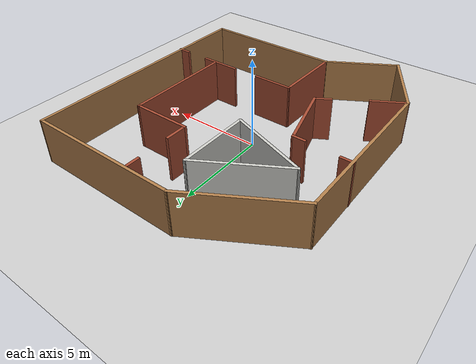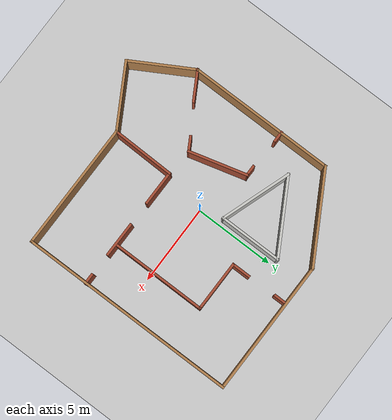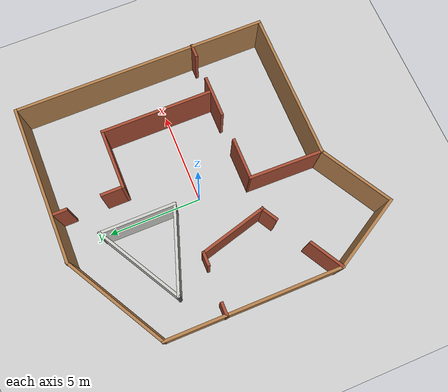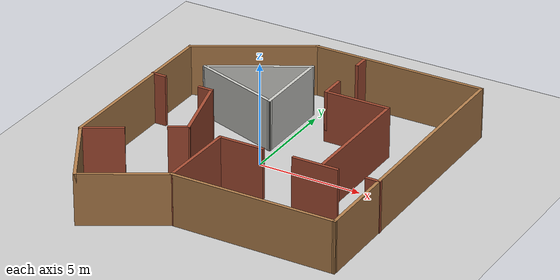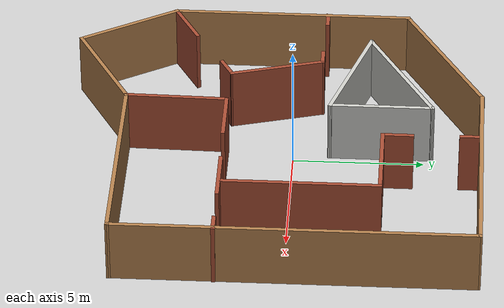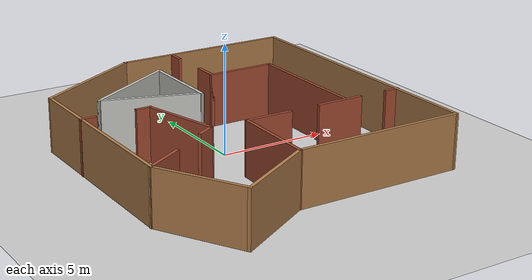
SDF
<sdf version="1.7">
 <world name="default">
  <light name="sun" type="directional">
   <pose>0 0 10 0 -0 0</pose>
   <diffuse>0.8 0.8 0.8 1</diffuse>
   <specular>0.2 0.2 0.2 1</specular>
   <attenuation>
    <range>1000</range>
    <constant>0.9</constant>
    <linear>0.01</linear>
    <quadratic>0.001</quadratic>
   </attenuation>
   <direction>-0.5 0.1 -0.9</direction>
   <spot><inner_angle>0</inner_angle><outer_angle>0</outer_angle><falloff>0</falloff></spot>
  </light>
  <model name="ground_plane">
   <static>1</static>
   <link name="link">
    <collision name="collision">
     <geometry><plane><normal>0 0 1</normal><size>100 100</size></plane></geometry>
     <surface><friction><ode><mu>100</mu><mu2>50</mu2></ode></friction></surface>
    </collision>
    <visual name="visual">
     <cast_shadows>0</cast_shadows>
     <geometry><plane><normal>0 0 1</normal><size>100 100</size></plane></geometry>
     <material>
      <script><uri>file://media/materials/scripts/gazebo.material</uri><name>Gazebo/Grey</name></script>
     </material>
    </visual>
   </link>
  </model>
  <gravity>0 0 -9.8</gravity>
  <magnetic_field>6e-06 2.3e-05 -4.2e-05</magnetic_field>
  <atmosphere type="adiabatic"/>
  <physics type="ode">
   <max_step_size>0.001</max_step_size>
   <real_time_factor>1</real_time_factor>
   <real_time_update_rate>1000</real_time_update_rate>
  </physics>
  <scene><ambient>0.4 0.4 0.4 1</ambient><background>0.7 0.7 0.7 1</background><shadows>1</shadows></scene>
  <audio><device>default</device></audio>
  <spherical_coordinates>
   <surface_model>EARTH_WGS84</surface_model>
   <latitude_deg>0</latitude_deg>
   <longitude_deg>0</longitude_deg>
   <elevation>0</elevation>
   <heading_deg>0</heading_deg>
  </spherical_coordinates>
  <model name="Room.world">
   <pose>0.56378 -0.644427 0 0 -0 0</pose>
   <link name="Wall_0">
    <collision name="Wall_0_Collision">
     <geometry><box><size>8 0.15 2.5</size></box></geometry>
     <pose>0 0 1.25 0 -0 0</pose>
    </collision>
    <visual name="Wall_0_Visual">
     <pose>0 0 1.25 0 -0 0</pose>
     <geometry><box><size>8 0.15 2.5</size></box></geometry>
     <material>
      <script><uri>file://media/materials/scripts/gazebo.material</uri><name>Gazebo/Wood</name></script>
      <ambient>1 1 1 1</ambient>
     </material>
     <meta><layer>0</layer></meta>
    </visual>
    <pose>2.80239 -5.73785 0 0 -0 0</pose>
   </link>
   <link name="Wall_10">
    <collision name="Wall_10_Collision">
     <geometry><box><size>4 0.15 2.5</size></box></geometry>
     <pose>0 0 1.25 0 -0 0</pose>
    </collision>
    <visual name="Wall_10_Visual">
     <pose>0 0 1.25 0 -0 0</pose>
     <geometry><box><size>4 0.15 2.5</size></box></geometry>
     <material>
      <script><uri>file://media/materials/scripts/gazebo.material</uri><name>Gazebo/CeilingTiled</name></script>
      <ambient>1 1 1 1</ambient>
     </material>
     <meta><layer>0</layer></meta>
    </visual>
    <pose>-0.882978 3.97439 0 0 -0 -1.5708</pose>
   </link>
   <link name="Wall_11">
    <collision name="Wall_11_Collision">
     <geometry><box><size>4.58537 0.15 2.5</size></box></geometry>
     <pose>0 0 1.25 0 -0 0</pose>
    </collision>
    <visual name="Wall_11_Visual">
     <pose>0 0 1.25 0 -0 0</pose>
     <geometry><box><size>4.58537 0.15 2.5</size></box></geometry>
     <material>
      <script><uri>file://media/materials/scripts/gazebo.material</uri><name>Gazebo/CeilingTiled</name></script>
      <ambient>1 1 1 1</ambient>
     </material>
     <meta><layer>0</layer></meta>
    </visual>
    <pose>-2.98309 2.76189 0 0 -0 2.81451</pose>
   </link>
   <link name="Wall_16">
    <collision name="Wall_16_Collision">
     <geometry><box><size>3.98326 0.15 2.5</size></box></geometry>
     <pose>0 0 1.25 0 -0 0</pose>
    </collision>
    <visual name="Wall_16_Visual">
     <pose>0 0 1.25 0 -0 0</pose>
     <geometry><box><size>3.98326 0.15 2.5</size></box></geometry>
     <material>
      <script><uri>file://media/materials/scripts/gazebo.material</uri><name>Gazebo/Bricks</name></script>
      <ambient>1 1 1 1</ambient>
     </material>
     <meta><layer>0</layer></meta>
    </visual>
    <pose>-1.08716 -3.82155 0 0 -0 1.5523</pose>
   </link>
   <link name="Wall_2">
    <collision name="Wall_2_Collision">
     <geometry><box><size>4.25 0.15 2.5</size></box></geometry>
     <pose>0 0 1.25 0 -0 0</pose>
    </collision>
    <visual name="Wall_2_Visual">
     <pose>0 0 1.25 0 -0 0</pose>
     <geometry><box><size>4.25 0.15 2.5</size></box></geometry>
     <material>
      <script><uri>file://media/materials/scripts/gazebo.material</uri><name>Gazebo/Wood</name></script>
      <ambient>1 1 1 1</ambient>
     </material>
     <meta><layer>0</layer></meta>
    </visual>
    <pose>-2.89796 -6.76285 0 0 -0 -2.61799</pose>
   </link>
   <link name="Wall_20">
    <collision name="Wall_20_Collision">
     <geometry><box><size>3.25 0.15 2.5</size></box></geometry>
     <pose>0 0 1.25 0 -0 0</pose>
    </collision>
    <visual name="Wall_20_Visual">
     <pose>0 0 1.25 0 -0 0</pose>
     <geometry><box><size>3.25 0.15 2.5</size></box></geometry>
     <material>
      <script><uri>file://media/materials/scripts/gazebo.material</uri><name>Gazebo/Bricks</name></script>
      <ambient>1 1 1 1</ambient>
     </material>
     <meta><layer>0</layer></meta>
    </visual>
    <pose>2.4124 4.08014 0 0 -0 0</pose>
   </link>
   <link name="Wall_24">
    <collision name="Wall_24_Collision">
     <geometry><box><size>3.71116 0.15 2.5</size></box></geometry>
     <pose>0 0 1.25 0 -0 0</pose>
    </collision>
    <visual name="Wall_24_Visual">
     <pose>0 0 1.25 0 -0 0</pose>
     <geometry><box><size>3.71116 0.15 2.5</size></box></geometry>
     <material>
      <script><uri>file://media/materials/scripts/gazebo.material</uri><name>Gazebo/Bricks</name></script>
      <ambient>1 1 1 1</ambient>
     </material>
     <meta><layer>0</layer></meta>
    </visual>
    <pose>-3.16908 -0.088434 0 0 -0 -1.30607</pose>
   </link>
   <link name="Wall_27">
    <collision name="Wall_27_Collision">
     <geometry><box><size>2.25 0.15 2.5</size></box></geometry>
     <pose>0 0 1.25 0 -0 0</pose>
    </collision>
    <visual name="Wall_27_Visual">
     <pose>0 0 1.25 0 -0 0</pose>
     <geometry><box><size>2.25 0.15 2.5</size></box></geometry>
     <material>
      <script><uri>file://media/materials/scripts/gazebo.material</uri><name>Gazebo/Bricks</name></script>
      <ambient>1 1 1 1</ambient>
     </material>
     <meta><layer>0</layer></meta>
    </visual>
    <pose>-0.001713 -1.90524 0 0 -0 0</pose>
   </link>
   <link name="Wall_3">
    <collision name="Wall_3_Collision">
     <geometry><box><size>4.25 0.15 2.5</size></box></geometry>
     <pose>0 0 1.25 0 -0 0</pose>
    </collision>
    <visual name="Wall_3_Visual">
     <pose>0 0 1.25 0 -0 0</pose>
     <geometry><box><size>4.25 0.15 2.5</size></box></geometry>
     <material>
      <script><uri>file://media/materials/scripts/gazebo.material</uri><name>Gazebo/Wood</name></script>
      <ambient>1 1 1 1</ambient>
     </material>
     <meta><layer>0</layer></meta>
    </visual>
    <pose>-5.69831 -6.0125 0 0 -0 2.0944</pose>
   </link>
   <link name="Wall_30">
    <collision name="Wall_30_Collision">
     <geometry><box><size>2.25 0.15 2.5</size></box></geometry>
     <pose>0 0 1.25 0 -0 0</pose>
    </collision>
    <visual name="Wall_30_Visual">
     <pose>0 0 1.25 0 -0 0</pose>
     <geometry><box><size>2.25 0.15 2.5</size></box></geometry>
     <material>
      <script><uri>file://media/materials/scripts/gazebo.material</uri><name>Gazebo/Bricks</name></script>
      <ambient>1 1 1 1</ambient>
     </material>
     <meta><layer>0</layer></meta>
    </visual>
    <pose>3.64726 -1.87793 0 0 -0 0</pose>
   </link>
   <link name="Wall_32">
    <collision name="Wall_32_Collision">
     <geometry><box><size>0.75 0.15 2.5</size></box></geometry>
     <pose>0 0 1.25 0 -0 0</pose>
    </collision>
    <visual name="Wall_32_Visual">
     <pose>0 0 1.25 0 -0 0</pose>
     <geometry><box><size>0.75 0.15 2.5</size></box></geometry>
     <material>
      <script><uri>file://media/materials/scripts/gazebo.material</uri><name>Gazebo/Bricks</name></script>
      <ambient>1 1 1 1</ambient>
     </material>
     <meta><layer>0</layer></meta>
    </visual>
    <pose>6.45076 -1.88943 0 0 -0 0</pose>
   </link>
   <link name="Wall_34">
    <collision name="Wall_34_Collision">
     <geometry><box><size>6 0.15 2.5</size></box></geometry>
     <pose>0 0 1.25 0 -0 0</pose>
    </collision>
    <visual name="Wall_34_Visual">
     <pose>0 0 1.25 0 -0 0</pose>
     <geometry><box><size>6 0.15 2.5</size></box></geometry>
     <material>
      <script><uri>file://media/materials/scripts/gazebo.material</uri><name>Gazebo/Bricks</name></script>
      <ambient>1 1 1 1</ambient>
     </material>
     <meta><layer>0</layer></meta>
    </visual>
    <pose>3.9624 1.15514 0 0 -0 -1.5708</pose>
   </link>
   <link name="Wall_36">
    <collision name="Wall_36_Collision">
     <geometry><box><size>2 0.15 2.5</size></box></geometry>
     <pose>0 0 1.25 0 -0 0</pose>
    </collision>
    <visual name="Wall_36_Visual">
     <pose>0 0 1.25 0 -0 0</pose>
     <geometry><box><size>2 0.15 2.5</size></box></geometry>
     <material>
      <script><uri>file://media/materials/scripts/gazebo.material</uri><name>Gazebo/Bricks</name></script>
      <ambient>1 1 1 1</ambient>
     </material>
     <meta><layer>0</layer></meta>
    </visual>
    <pose>-5.92224 -3.77465 0 0 -0 0.523599</pose>
   </link>
   <link name="Wall_38">
    <collision name="Wall_38_Collision">
     <geometry><box><size>1 0.15 2.5</size></box></geometry>
     <pose>0 0 1.25 0 -0 0</pose>
    </collision>
    <visual name="Wall_38_Visual">
     <pose>0 0 1.25 0 -0 0</pose>
     <geometry><box><size>1 0.15 2.5</size></box></geometry>
     <material>
      <script><uri>file://media/materials/scripts/gazebo.material</uri><name>Gazebo/Bricks</name></script>
      <ambient>1 1 1 1</ambient>
     </material>
     <meta><layer>0</layer></meta>
    </visual>
    <pose>-3.07126 -2.01949 0 0 -0 -2.61799</pose>
   </link>
   <link name="Wall_4">
    <collision name="Wall_4_Collision">
     <geometry><box><size>9.25 0.15 2.5</size></box></geometry>
     <pose>0 0 1.25 0 -0 0</pose>
    </collision>
    <visual name="Wall_4_Visual">
     <pose>0 0 1.25 0 -0 0</pose>
     <geometry><box><size>9.25 0.15 2.5</size></box></geometry>
     <material>
      <script><uri>file://media/materials/scripts/gazebo.material</uri><name>Gazebo/Wood</name></script>
      <ambient>1 1 1 1</ambient>
     </material>
     <meta><layer>0</layer></meta>
    </visual>
    <pose>-6.72331 0.312852 0 0 -0 1.5708</pose>
   </link>
   <link name="Wall_40">
    <collision name="Wall_40_Collision">
     <geometry><box><size>0.75 0.15 2.5</size></box></geometry>
     <pose>0 0 1.25 0 -0 0</pose>
    </collision>
    <visual name="Wall_40_Visual">
     <pose>0 0 1.25 0 -0 0</pose>
     <geometry><box><size>0.75 0.15 2.5</size></box></geometry>
     <material>
      <script><uri>file://media/materials/scripts/gazebo.material</uri><name>Gazebo/Bricks</name></script>
      <ambient>1 1 1 1</ambient>
     </material>
     <meta><layer>0</layer></meta>
    </visual>
    <pose>-3.93495 1.63012 0 0 -0 3.14159</pose>
   </link>
   <link name="Wall_42">
    <collision name="Wall_42_Collision">
     <geometry><box><size>0.75 0.15 2.5</size></box></geometry>
     <pose>0 0 1.25 0 -0 0</pose>
    </collision>
    <visual name="Wall_42_Visual">
     <pose>0 0 1.25 0 -0 0</pose>
     <geometry><box><size>0.75 0.15 2.5</size></box></geometry>
     <material>
      <script><uri>file://media/materials/scripts/gazebo.material</uri><name>Gazebo/Bricks</name></script>
      <ambient>1 1 1 1</ambient>
     </material>
     <meta><layer>0</layer></meta>
    </visual>
    <pose>-6.44645 1.7221 0 0 -0 0</pose>
   </link>
   <link name="Wall_44">
    <collision name="Wall_44_Collision">
     <geometry><box><size>1.25 0.15 2.5</size></box></geometry>
     <pose>0 0 1.25 0 -0 0</pose>
    </collision>
    <visual name="Wall_44_Visual">
     <pose>0 0 1.25 0 -0 0</pose>
     <geometry><box><size>1.25 0.15 2.5</size></box></geometry>
     <material>
      <script><uri>file://media/materials/scripts/gazebo.material</uri><name>Gazebo/Bricks</name></script>
      <ambient>1 1 1 1</ambient>
     </material>
     <meta><layer>0</layer></meta>
    </visual>
    <pose>0.862403 4.63014 0 0 -0 1.5708</pose>
   </link>
   <link name="Wall_47">
    <collision name="Wall_47_Collision">
     <geometry><box><size>0.75 0.15 2.5</size></box></geometry>
     <pose>0 0 1.25 0 -0 0</pose>
    </collision>
    <visual name="Wall_47_Visual">
     <pose>0 0 1.25 0 -0 0</pose>
     <geometry><box><size>0.75 0.15 2.5</size></box></geometry>
     <material>
      <script><uri>file://media/materials/scripts/gazebo.material</uri><name>Gazebo/Bricks</name></script>
      <ambient>1 1 1 1</ambient>
     </material>
     <meta><layer>0</layer></meta>
    </visual>
    <pose>0.82207 7.33298 0 0 -0 1.5708</pose>
   </link>
   <link name="Wall_5">
    <collision name="Wall_5_Collision">
     <geometry><box><size>6 0.15 2.5</size></box></geometry>
     <pose>0 0 1.25 0 -0 0</pose>
    </collision>
    <visual name="Wall_5_Visual">
     <pose>0 0 1.25 0 -0 0</pose>
     <geometry><box><size>6 0.15 2.5</size></box></geometry>
     <material>
      <script><uri>file://media/materials/scripts/gazebo.material</uri><name>Gazebo/Wood</name></script>
      <ambient>1 1 1 1</ambient>
     </material>
     <meta><layer>0</layer></meta>
    </visual>
    <pose>-4.19019 6.32535 0 0 -0 0.523599</pose>
   </link>
   <link name="Wall_6">
    <collision name="Wall_6_Collision">
     <geometry><box><size>8.5 0.15 2.5</size></box></geometry>
     <pose>0 0 1.25 0 -0 0</pose>
    </collision>
    <visual name="Wall_6_Visual">
     <pose>0 0 1.25 0 -0 0</pose>
     <geometry><box><size>8.5 0.15 2.5</size></box></geometry>
     <material>
      <script><uri>file://media/materials/scripts/gazebo.material</uri><name>Gazebo/Wood</name></script>
      <ambient>1 1 1 1</ambient>
     </material>
     <meta><layer>0</layer></meta>
    </visual>
    <pose>2.51794 7.78785 0 0 -0 0</pose>
   </link>
   <link name="Wall_7">
    <collision name="Wall_7_Collision">
     <geometry><box><size>13.6757 0.15 2.5</size></box></geometry>
     <pose>0 0 1.25 0 -0 0</pose>
    </collision>
    <visual name="Wall_7_Visual">
     <pose>0 0 1.25 0 -0 0</pose>
     <geometry><box><size>13.6757 0.15 2.5</size></box></geometry>
     <material>
      <script><uri>file://media/materials/scripts/gazebo.material</uri><name>Gazebo/Wood</name></script>
      <ambient>1 1 1 1</ambient>
     </material>
     <meta><layer>0</layer></meta>
    </visual>
    <pose>6.71016 1.025 0 0 -0 -1.56825</pose>
   </link>
   <link name="Wall_9">
    <collision name="Wall_9_Collision">
     <geometry><box><size>5 0.15 2.5</size></box></geometry>
     <pose>0 0 1.25 0 -0 0</pose>
    </collision>
    <visual name="Wall_9_Visual">
     <pose>0 0 1.25 0 -0 0</pose>
     <geometry><box><size>5 0.15 2.5</size></box></geometry>
     <material>
      <script><uri>file://media/materials/scripts/gazebo.material</uri><name>Gazebo/CeilingTiled</name></script>
      <ambient>1 1 1 1</ambient>
     </material>
     <meta><layer>0</layer></meta>
    </visual>
    <pose>-2.98309 4.68689 0 0 -0 0.523599</pose>
   </link>
   <static>1</static>
  </model>
 </world>
</sdf>
